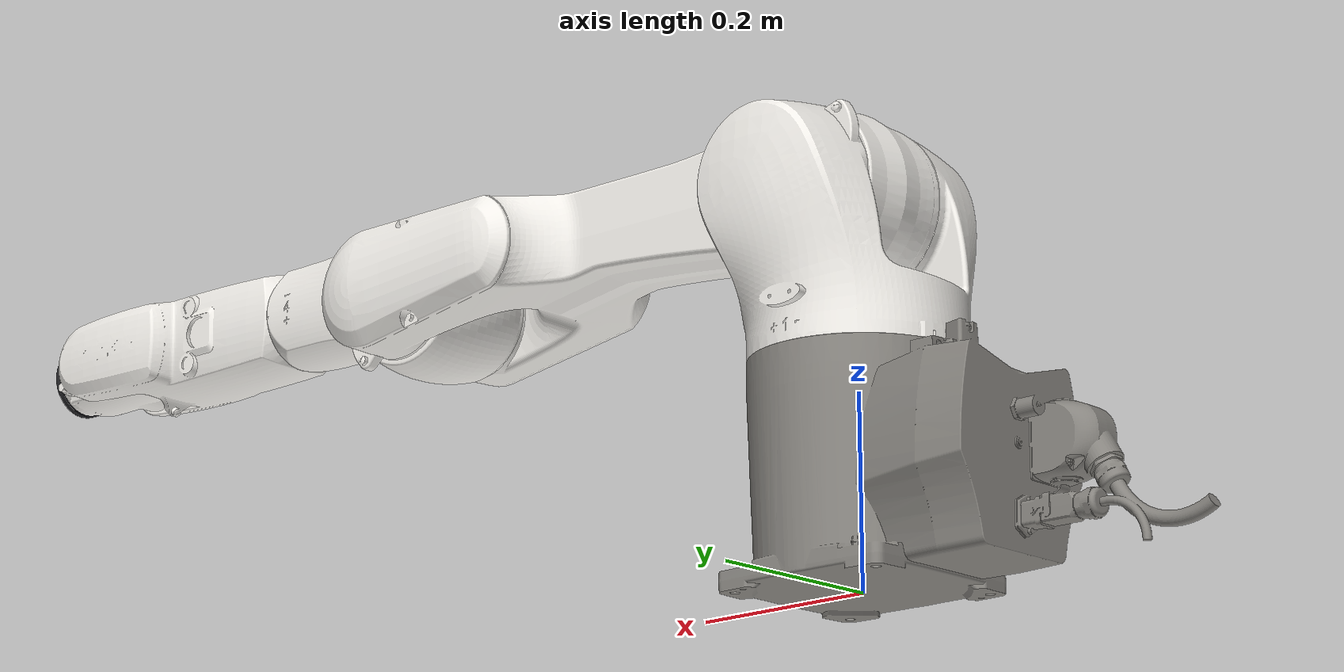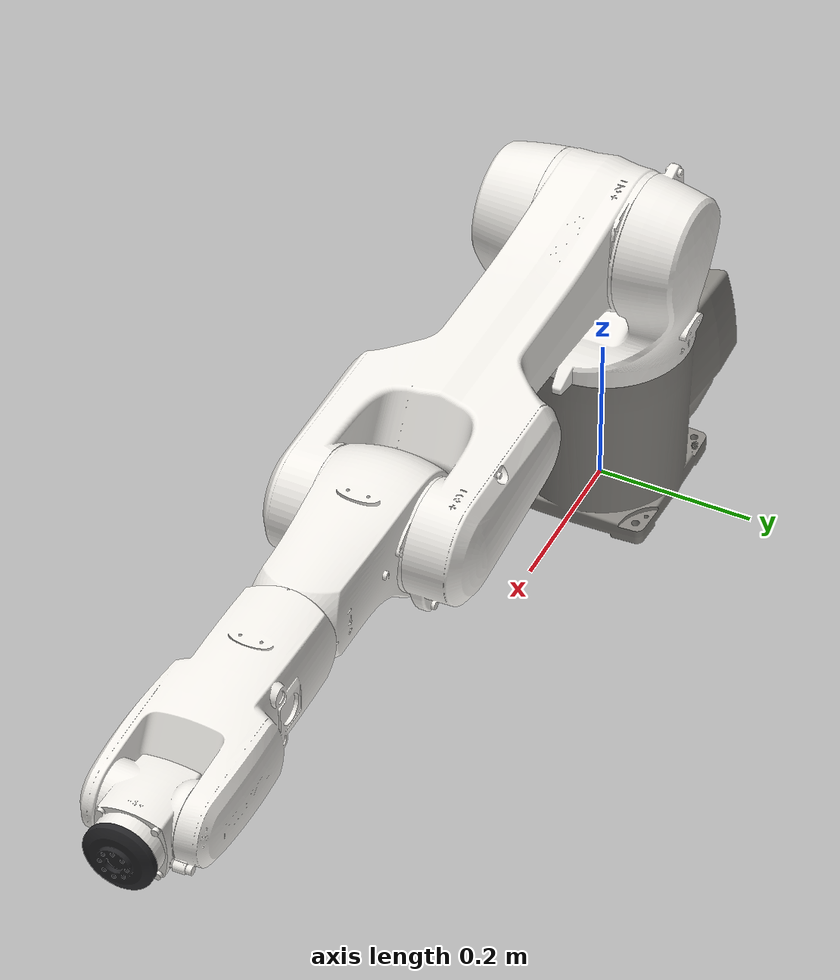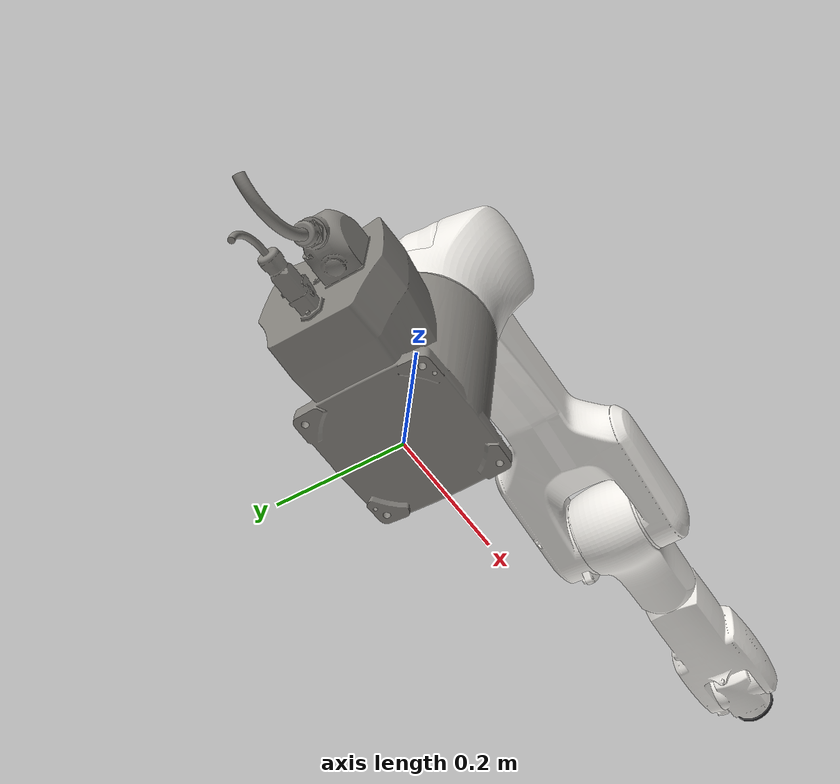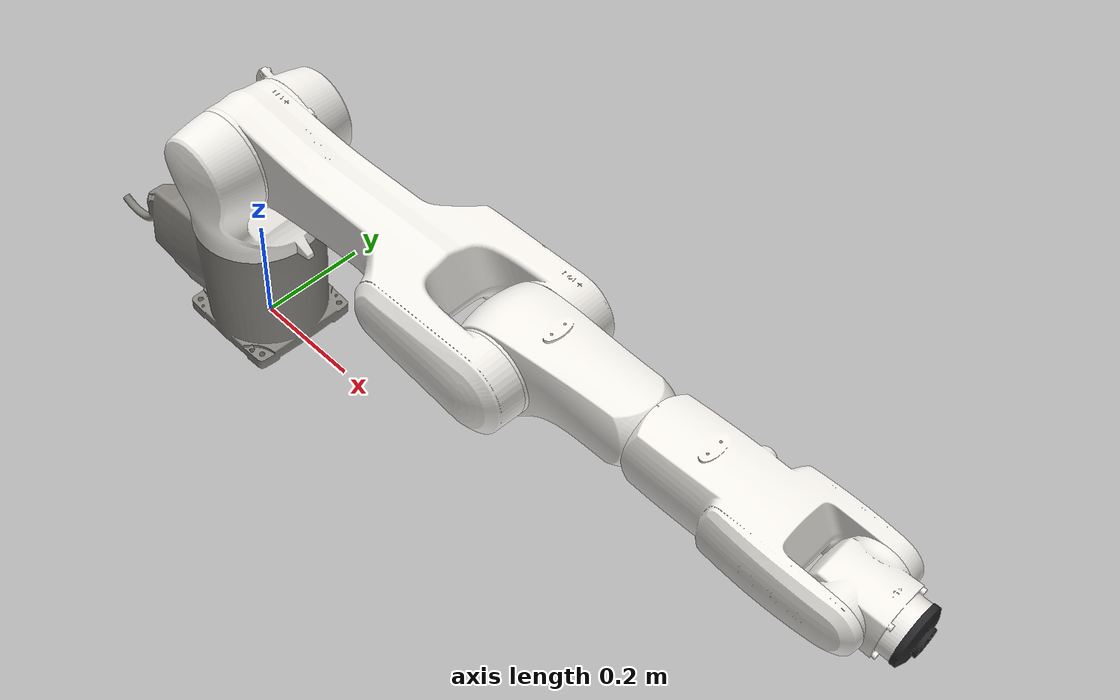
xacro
<?xml version="1.0" encoding="utf-8"?>

<robot xmlns:xacro="http://www.ros.org/wiki/xacro"
  name="kr10_r1100_2_urdf">

  <!-- Link Information -->
  <link name="world"/>

  <link
    name="base_link">
    <inertial>
      <origin
        xyz="-0.046215 -0.00097998 0.11375"
        rpy="0 0 0" />
      <mass
        value="92.385" />
      <inertia
        ixx="0.60807"
        ixy="-0.00041131"
        ixz="-0.0039247"
        iyy="0.69265"
        iyz="0.00020756"
        izz="0.59634" />
    </inertial>
    <visual>
      <origin
        xyz="0 0 0"
        rpy="0 0 0" />
      <geometry>
        <mesh
          filename="package://kr10_r1100_2_urdf/meshes/base_link.STL" />
      </geometry>
      <material
        name="">
        <color
          rgba="0.53 0.52 0.5 1" />
      </material>
    </visual>
    <collision>
      <origin
        xyz="0 0 0"
        rpy="0 0 0" />
      <geometry>
        <mesh
          filename="package://kr10_r1100_2_urdf/meshes/base_link.STL" />
      </geometry>
    </collision>
  </link>

  <link
    name="link_1">
    <inertial>
      <origin
        xyz="0.0079117 -0.0005081 0.10392"
        rpy="0 0 0" />
      <mass
        value="46.99" />
      <inertia
        ixx="0.56221"
        ixy="0.001981"
        ixz="-0.038959"
        iyy="0.35915"
        iyz="0.0038641"
        izz="0.42363" />
    </inertial>
    <visual>
      <origin
        xyz="0 0 0"
        rpy="0 0 0" />
      <geometry>
        <mesh
          filename="package://kr10_r1100_2_urdf/meshes/link_1.STL" />
      </geometry>
      <material
        name="">
        <color
          rgba="0.95 0.94 0.92 1" />
      </material>
    </visual>
    <collision>
      <origin
        xyz="0 0 0"
        rpy="0 0 0" />
      <geometry>
        <mesh
          filename="package://kr10_r1100_2_urdf/meshes/link_1.STL" />
      </geometry>
    </collision>
  </link>

  <link
    name="link_2">
    <inertial>
      <origin
        xyz="0.26715 0.0012722 0.0091112"
        rpy="0 0 0" />
      <mass
        value="0.010818" />
      <inertia
        ixx="5.4944E-05"
        ixy="-3.5487E-06"
        ixz="-1.6368E-06"
        iyy="0.00047207"
        iyz="1.2113E-07"
        izz="0.00049933" />
    </inertial>
    <visual>
      <origin
        xyz="0 0 0"
        rpy="0 0 0" />
      <geometry>
        <mesh
          filename="package://kr10_r1100_2_urdf/meshes/link_2.STL" />
      </geometry>
      <material
        name="">
        <color
          rgba="0.95 0.94 0.92 1" />
      </material>
    </visual>
    <collision>
      <origin
        xyz="0 0 0"
        rpy="0 0 0" />
      <geometry>
        <mesh
          filename="package://kr10_r1100_2_urdf/meshes/link_2.STL" />
      </geometry>
    </collision>
  </link>

  <link
    name="link_3">
    <inertial>
      <origin
        xyz="0.052479 0.0017565 0.011131"
        rpy="0 0 0" />
      <mass
        value="31.256" />
      <inertia
        ixx="0.081328"
        ixy="-0.0033593"
        ixz="-0.024532"
        iyy="0.22532"
        iyz="-0.000457"
        izz="0.21737" />
    </inertial>
    <visual>
      <origin
        xyz="0 0 0"
        rpy="0 0 0" />
      <geometry>
        <mesh
          filename="package://kr10_r1100_2_urdf/meshes/link_3.STL" />
      </geometry>
      <material
        name="">
        <color
          rgba="0.95 0.94 0.92 1" />
      </material>
    </visual>
    <collision>
      <origin
        xyz="0 0 0"
        rpy="0 0 0" />
      <geometry>
        <mesh
          filename="package://kr10_r1100_2_urdf/meshes/link_3.STL" />
      </geometry>
    </collision>
  </link>

  <link
    name="link_4">
    <inertial>
      <origin
        xyz="0.1439 0.0016761 -6.2172E-05"
        rpy="0 0 0" />
      <mass
        value="27.578" />
      <inertia
        ixx="0.067109"
        ixy="-0.0076319"
        ixz="0.00026984"
        iyy="0.22553"
        iyz="2.5028E-05"
        izz="0.24843" />
    </inertial>
    <visual>
      <origin
        xyz="0 0 0"
        rpy="0 0 0" />
      <geometry>
        <mesh
          filename="package://kr10_r1100_2_urdf/meshes/link_4.STL" />
      </geometry>
      <material
        name="">
        <color
          rgba="0.95 0.94 0.92 1" />
      </material>
    </visual>
    <collision>
      <origin
        xyz="0 0 0"
        rpy="0 0 0" />
      <geometry>
        <mesh
          filename="package://kr10_r1100_2_urdf/meshes/link_4.STL" />
      </geometry>
    </collision>
  </link>

  <link
    name="link_5">
    <inertial>
      <origin
        xyz="0.011453 0.0018281 -4.1712E-06"
        rpy="0 0 0" />
      <mass
        value="6.0025" />
      <inertia
        ixx="0.0067274"
        ixy="-7.7823E-05"
        ixz="7.3264E-07"
        iyy="0.0086233"
        iyz="8.6686E-07"
        izz="0.0098381" />
    </inertial>
    <visual>
      <origin
        xyz="0 0 0"
        rpy="0 0 0" />
      <geometry>
        <mesh
          filename="package://kr10_r1100_2_urdf/meshes/link_5.STL" />
      </geometry>
      <material
        name="">
        <color
          rgba="0.95 0.94 0.92 1" />
      </material>
    </visual>
    <collision>
      <origin
        xyz="0 0 0"
        rpy="0 0 0" />
      <geometry>
        <mesh
          filename="package://kr10_r1100_2_urdf/meshes/link_5.STL" />
      </geometry>
    </collision>
  </link>

  <link
    name="link_6">
    <inertial>
      <origin
        xyz="-8.8191E-06 2.9166E-09 -0.012726"
        rpy="0 0 0" />
      <mass
        value="0.59762" />
      <inertia
        ixx="0.00022769"
        ixy="-2.9626E-10"
        ixz="3.2803E-08"
        iyy="0.0002277"
        iyz="-1.5227E-10"
        izz="0.00042702" />
    </inertial>
    <visual>
      <origin
        xyz="0 0 0"
        rpy="0 0 0" />
      <geometry>
        <mesh
          filename="package://kr10_r1100_2_urdf/meshes/link_6.STL" />
      </geometry>
      <material
        name="">
        <color
          rgba="0.15 0.15 0.16 1" />
      </material>
    </visual>
    <collision>
      <origin
        xyz="0 0 0"
        rpy="0 0 0" />
      <geometry>
        <mesh
          filename="package://kr10_r1100_2_urdf/meshes/link_6.STL" />
      </geometry>
    </collision>
  </link>

  <!-- Joint information -->
  <joint name="base_joint" type="fixed">
    <parent link="world"/>
    <child link="base_link"/>
    <origin rpy="0 0 0" xyz="0.0 0.0 0.0"/>
  </joint>

  <joint
    name="joint_1"
    type="revolute">
    <origin
      xyz="0 0 0.2297"
      rpy="0 0 0" />
    <parent
      link="base_link" />
    <child
      link="link_1" />
    <axis
      xyz="0 0 -1" />
    <limit
      lower="-2.9671"
      upper="2.9671"
      effort="0"
      velocity="5.236" />
  </joint>

  <joint
    name="joint_2"
    type="revolute">
    <origin
      xyz="0.025 0 0.1703"
      rpy="0 0 0" />
    <parent
      link="link_1" />
    <child
      link="link_2" />
    <axis
      xyz="0 1 0" />
    <limit
      lower="-3.3161"
      upper="0.7854"
      effort="0"
      velocity="3.927" />
  </joint>

  <joint
    name="joint_3"
    type="revolute">
    <origin
      xyz="0.56 -0.0045 0"
      rpy="0 0 0" />
    <parent
      link="link_2" />
    <child
      link="link_3" />
    <axis
      xyz="0 1 0" />
    <limit
      lower="-2.0944"
      upper="2.7227"
      effort="0"
      velocity="5.7596" />
  </joint>

  <joint
    name="joint_4"
    type="revolute">
    <origin
      xyz="0.215 0.0045 0.025"
      rpy="0 0 0" />
    <parent
      link="link_3" />
    <child
      link="link_4" />
    <axis
      xyz="-1 0 0" />
    <limit
      lower="-3.2289"
      upper="3.2289"
      effort="0"
      velocity="6.2832" />
  </joint>

  <joint
    name="joint_5"
    type="revolute">
    <origin
      xyz="0.3 -0.00325 0"
      rpy="0 0 0" />
    <parent
      link="link_4" />
    <child
      link="link_5" />
    <axis
      xyz="0 1 0" />
    <limit
      lower="-2.0944"
      upper="2.0944"
      effort="0"
      velocity="6.2832" />
  </joint>

  <joint
    name="joint_6"
    type="revolute">
    <origin
      xyz="0.09 0.00325 0"
      rpy="0 1.5708 0" />
    <parent
      link="link_5" />
    <child
      link="link_6" />
    <axis
      xyz="0 0 -1" />
    <limit
      lower="-6.1087"
      upper="6.1087"
      effort="0"
      velocity="7.5573" />
  </joint>

  <!-- Transmission information -->
  <transmission name="link_1_trans">
    <type>transmission_interface/SimpleTransmission</type>
    <joint name="joint_1">
    <hardwareInterface>hardware_interface/PositionJointInterface</hardwareInterface>
    </joint>
    <actuator name="link_1_motor">
    <hardwareInterface>hardware_interface/PositionJointInterface</hardwareInterface>
      <mechanicalReduction>1</mechanicalReduction>
    </actuator>
  </transmission>

  <transmission name="link_2_trans">
    <type>transmission_interface/SimpleTransmission</type>
    <joint name="joint_2">
    <hardwareInterface>hardware_interface/PositionJointInterface</hardwareInterface>
    </joint>
    <actuator name="link_2_motor">
    <hardwareInterface>hardware_interface/PositionJointInterface</hardwareInterface>
      <mechanicalReduction>1</mechanicalReduction>
    </actuator>
  </transmission>

  <transmission name="link_3_trans">
    <type>transmission_interface/SimpleTransmission</type>
    <joint name="joint_3">
    <hardwareInterface>hardware_interface/PositionJointInterface</hardwareInterface>
    </joint>
    <actuator name="link_3_motor">
    <hardwareInterface>hardware_interface/PositionJointInterface</hardwareInterface>
      <mechanicalReduction>1</mechanicalReduction>
    </actuator>
  </transmission>

  <transmission name="link_4_trans">
    <type>transmission_interface/SimpleTransmission</type>
    <joint name="joint_4">
    <hardwareInterface>hardware_interface/PositionJointInterface</hardwareInterface>
    </joint>
    <actuator name="link_4_motor">
    <hardwareInterface>hardware_interface/PositionJointInterface</hardwareInterface>
      <mechanicalReduction>1</mechanicalReduction>
    </actuator>
  </transmission>

  <transmission name="link_5_trans">
    <type>transmission_interface/SimpleTransmission</type>
    <joint name="joint_5">
    <hardwareInterface>hardware_interface/PositionJointInterface</hardwareInterface>
    </joint>
    <actuator name="link_5_motor">
    <hardwareInterface>hardware_interface/PositionJointInterface</hardwareInterface>
      <mechanicalReduction>1</mechanicalReduction>
    </actuator>
  </transmission>

  <transmission name="link_6_trans">
    <type>transmission_interface/SimpleTransmission</type>
    <joint name="joint_6">
    <hardwareInterface>hardware_interface/PositionJointInterface</hardwareInterface>
    </joint>
    <actuator name="link_6_motor">
    <hardwareInterface>hardware_interface/PositionJointInterface</hardwareInterface>
      <mechanicalReduction>1</mechanicalReduction>
    </actuator>
  </transmission>

  <!-- Gazebo information -->
  <gazebo>
    <plugin name="control" filename="libgazebo_ros_control.so">
      <robotNamespace>/</robotNamespace>
    </plugin>
  </gazebo>

  <gazebo reference="link_1">
    <selfCollide>true</selfCollide>
  </gazebo>

  <gazebo reference="link_2">
    <selfCollide>true</selfCollide>
  </gazebo>

  <gazebo reference="link_3">
    <selfCollide>true</selfCollide>
  </gazebo>

  <gazebo reference="link_4">
    <selfCollide>true</selfCollide>
  </gazebo>

  <gazebo reference="link_5">
    <selfCollide>true</selfCollide>
  </gazebo>

  <gazebo reference="link_6">
    <selfCollide>true</selfCollide>
  </gazebo>
</robot>
